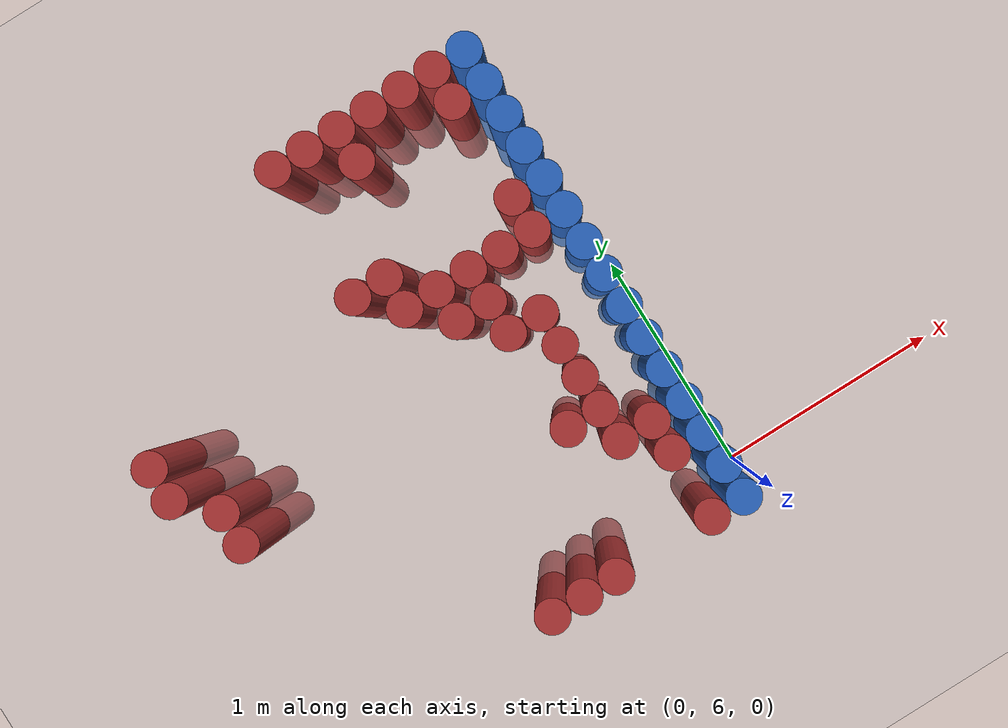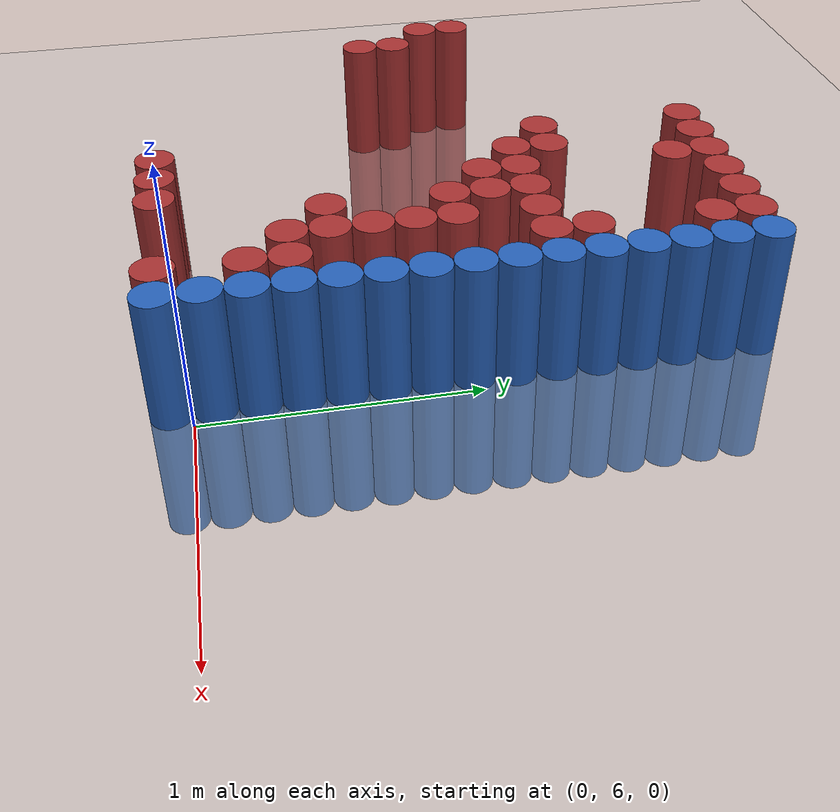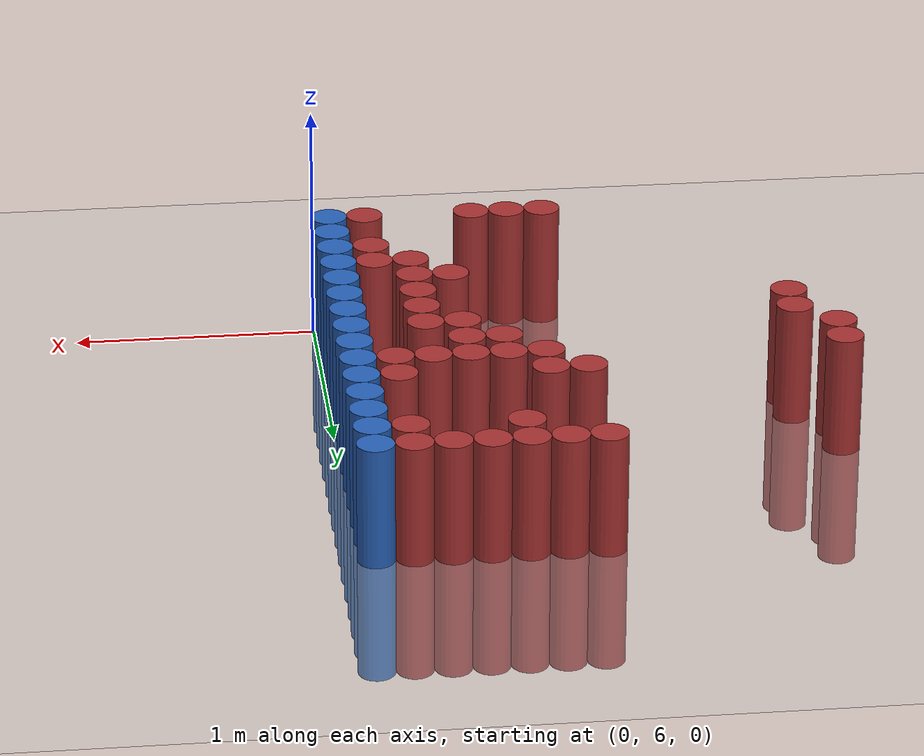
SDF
<sdf version="1.6">
 <world name="default">
  <model name="ground_plane">
   <static>1</static>
   <link name="link">
    <collision name="collision">
     <geometry><plane><normal>0 0 1</normal><size>100 100</size></plane></geometry>
     <surface><friction><ode><mu>100</mu><mu2>50</mu2></ode></friction></surface>
    </collision>
    <visual name="visual">
     <cast_shadows>0</cast_shadows>
     <geometry><plane><normal>0 0 1</normal><size>100 100</size></plane></geometry>
     <material>
      <script><uri>file://media/materials/scripts/gazebo.material</uri><name>Gazebo/Grey</name></script>
     </material>
    </visual>
   </link>
  </model>
  <model name="unit_cylinder_228">
   <static>1</static>
   <pose>-2.025000 7.125000 0.000000 0.000000 0.000000 0.000000</pose>
   <link name="link">
    <inertial>
     <mass>1</mass>
     <inertia><ixx>0.145833</ixx><ixy>0</ixy><ixz>0</ixz><iyy>0.145833</iyy><iyz>0</iyz><izz>0.125</izz></inertia>
    </inertial>
    <collision name="collision">
     <geometry><cylinder><radius>0.075000</radius><length>1</length></cylinder></geometry>
    </collision>
    <visual name="visual">
     <geometry><cylinder><radius>0.075000</radius><length>1</length></cylinder></geometry>
     <material>
      <ambient>0.648000 0.192000 0.192000 1</ambient>
      <diffuse>0.648000 0.192000 0.192000 1</diffuse>
     </material>
     <material>
      <script><name>Gazebo/Grey</name><uri>file://media/materials/scripts/gazebo.material</uri></script>
     </material>
    </visual>
   </link>
  </model>
  <model name="unit_cylinder_229">
   <static>1</static>
   <pose>-2.025000 7.275000 0.000000 0.000000 0.000000 0.000000</pose>
   <link name="link">
    <inertial>
     <mass>1</mass>
     <inertia><ixx>0.145833</ixx><ixy>0</ixy><ixz>0</ixz><iyy>0.145833</iyy><iyz>0</iyz><izz>0.125</izz></inertia>
    </inertial>
    <collision name="collision">
     <geometry><cylinder><radius>0.075000</radius><length>1</length></cylinder></geometry>
    </collision>
    <visual name="visual">
     <geometry><cylinder><radius>0.075000</radius><length>1</length></cylinder></geometry>
     <material>
      <ambient>0.648000 0.192000 0.192000 1</ambient>
      <diffuse>0.648000 0.192000 0.192000 1</diffuse>
     </material>
     <material>
      <script><name>Gazebo/Grey</name><uri>file://media/materials/scripts/gazebo.material</uri></script>
     </material>
    </visual>
   </link>
  </model>
  <model name="unit_cylinder_231">
   <static>1</static>
   <pose>-1.875000 6.825000 0.000000 0.000000 0.000000 0.000000</pose>
   <link name="link">
    <inertial>
     <mass>1</mass>
     <inertia><ixx>0.145833</ixx><ixy>0</ixy><ixz>0</ixz><iyy>0.145833</iyy><iyz>0</iyz><izz>0.125</izz></inertia>
    </inertial>
    <collision name="collision">
     <geometry><cylinder><radius>0.075000</radius><length>1</length></cylinder></geometry>
    </collision>
    <visual name="visual">
     <geometry><cylinder><radius>0.075000</radius><length>1</length></cylinder></geometry>
     <material>
      <ambient>0.648000 0.192000 0.192000 1</ambient>
      <diffuse>0.648000 0.192000 0.192000 1</diffuse>
     </material>
     <material>
      <script><name>Gazebo/Grey</name><uri>file://media/materials/scripts/gazebo.material</uri></script>
     </material>
    </visual>
   </link>
  </model>
  <model name="unit_cylinder_232">
   <static>1</static>
   <pose>-1.875000 6.975000 0.000000 0.000000 0.000000 0.000000</pose>
   <link name="link">
    <inertial>
     <mass>1</mass>
     <inertia><ixx>0.145833</ixx><ixy>0</ixy><ixz>0</ixz><iyy>0.145833</iyy><iyz>0</iyz><izz>0.125</izz></inertia>
    </inertial>
    <collision name="collision">
     <geometry><cylinder><radius>0.075000</radius><length>1</length></cylinder></geometry>
    </collision>
    <visual name="visual">
     <geometry><cylinder><radius>0.075000</radius><length>1</length></cylinder></geometry>
     <material>
      <ambient>0.648000 0.192000 0.192000 1</ambient>
      <diffuse>0.648000 0.192000 0.192000 1</diffuse>
     </material>
     <material>
      <script><name>Gazebo/Grey</name><uri>file://media/materials/scripts/gazebo.material</uri></script>
     </material>
    </visual>
   </link>
  </model>
  <model name="unit_cylinder_255">
   <static>1</static>
   <pose>-0.975000 5.925000 0.000000 0.000000 0.000000 0.000000</pose>
   <link name="link">
    <inertial>
     <mass>1</mass>
     <inertia><ixx>0.145833</ixx><ixy>0</ixy><ixz>0</ixz><iyy>0.145833</iyy><iyz>0</iyz><izz>0.125</izz></inertia>
    </inertial>
    <collision name="collision">
     <geometry><cylinder><radius>0.075000</radius><length>1</length></cylinder></geometry>
    </collision>
    <visual name="visual">
     <geometry><cylinder><radius>0.075000</radius><length>1</length></cylinder></geometry>
     <material>
      <ambient>0.648000 0.192000 0.192000 1</ambient>
      <diffuse>0.648000 0.192000 0.192000 1</diffuse>
     </material>
     <material>
      <script><name>Gazebo/Grey</name><uri>file://media/materials/scripts/gazebo.material</uri></script>
     </material>
    </visual>
   </link>
  </model>
  <model name="unit_cylinder_256">
   <static>1</static>
   <pose>-0.975000 7.425000 0.000000 0.000000 0.000000 0.000000</pose>
   <link name="link">
    <inertial>
     <mass>1</mass>
     <inertia><ixx>0.145833</ixx><ixy>0</ixy><ixz>0</ixz><iyy>0.145833</iyy><iyz>0</iyz><izz>0.125</izz></inertia>
    </inertial>
    <collision name="collision">
     <geometry><cylinder><radius>0.075000</radius><length>1</length></cylinder></geometry>
    </collision>
    <visual name="visual">
     <geometry><cylinder><radius>0.075000</radius><length>1</length></cylinder></geometry>
     <material>
      <ambient>0.648000 0.192000 0.192000 1</ambient>
      <diffuse>0.648000 0.192000 0.192000 1</diffuse>
     </material>
     <material>
      <script><name>Gazebo/Grey</name><uri>file://media/materials/scripts/gazebo.material</uri></script>
     </material>
    </visual>
   </link>
  </model>
  <model name="unit_cylinder_257">
   <static>1</static>
   <pose>-0.975000 8.025000 0.000000 0.000000 0.000000 0.000000</pose>
   <link name="link">
    <inertial>
     <mass>1</mass>
     <inertia><ixx>0.145833</ixx><ixy>0</ixy><ixz>0</ixz><iyy>0.145833</iyy><iyz>0</iyz><izz>0.125</izz></inertia>
    </inertial>
    <collision name="collision">
     <geometry><cylinder><radius>0.075000</radius><length>1</length></cylinder></geometry>
    </collision>
    <visual name="visual">
     <geometry><cylinder><radius>0.075000</radius><length>1</length></cylinder></geometry>
     <material>
      <ambient>0.648000 0.192000 0.192000 1</ambient>
      <diffuse>0.648000 0.192000 0.192000 1</diffuse>
     </material>
     <material>
      <script><name>Gazebo/Grey</name><uri>file://media/materials/scripts/gazebo.material</uri></script>
     </material>
    </visual>
   </link>
  </model>
  <model name="unit_cylinder_262">
   <static>1</static>
   <pose>-0.825000 5.925000 0.000000 0.000000 0.000000 0.000000</pose>
   <link name="link">
    <inertial>
     <mass>1</mass>
     <inertia><ixx>0.145833</ixx><ixy>0</ixy><ixz>0</ixz><iyy>0.145833</iyy><iyz>0</iyz><izz>0.125</izz></inertia>
    </inertial>
    <collision name="collision">
     <geometry><cylinder><radius>0.075000</radius><length>1</length></cylinder></geometry>
    </collision>
    <visual name="visual">
     <geometry><cylinder><radius>0.075000</radius><length>1</length></cylinder></geometry>
     <material>
      <ambient>0.648000 0.192000 0.192000 1</ambient>
      <diffuse>0.648000 0.192000 0.192000 1</diffuse>
     </material>
     <material>
      <script><name>Gazebo/Grey</name><uri>file://media/materials/scripts/gazebo.material</uri></script>
     </material>
    </visual>
   </link>
  </model>
  <model name="unit_cylinder_263">
   <static>1</static>
   <pose>-0.825000 7.275000 0.000000 0.000000 0.000000 0.000000</pose>
   <link name="link">
    <inertial>
     <mass>1</mass>
     <inertia><ixx>0.145833</ixx><ixy>0</ixy><ixz>0</ixz><iyy>0.145833</iyy><iyz>0</iyz><izz>0.125</izz></inertia>
    </inertial>
    <collision name="collision">
     <geometry><cylinder><radius>0.075000</radius><length>1</length></cylinder></geometry>
    </collision>
    <visual name="visual">
     <geometry><cylinder><radius>0.075000</radius><length>1</length></cylinder></geometry>
     <material>
      <ambient>0.648000 0.192000 0.192000 1</ambient>
      <diffuse>0.648000 0.192000 0.192000 1</diffuse>
     </material>
     <material>
      <script><name>Gazebo/Grey</name><uri>file://media/materials/scripts/gazebo.material</uri></script>
     </material>
    </visual>
   </link>
  </model>
  <model name="unit_cylinder_264">
   <static>1</static>
   <pose>-0.825000 7.425000 0.000000 0.000000 0.000000 0.000000</pose>
   <link name="link">
    <inertial>
     <mass>1</mass>
     <inertia><ixx>0.145833</ixx><ixy>0</ixy><ixz>0</ixz><iyy>0.145833</iyy><iyz>0</iyz><izz>0.125</izz></inertia>
    </inertial>
    <collision name="collision">
     <geometry><cylinder><radius>0.075000</radius><length>1</length></cylinder></geometry>
    </collision>
    <visual name="visual">
     <geometry><cylinder><radius>0.075000</radius><length>1</length></cylinder></geometry>
     <material>
      <ambient>0.648000 0.192000 0.192000 1</ambient>
      <diffuse>0.648000 0.192000 0.192000 1</diffuse>
     </material>
     <material>
      <script><name>Gazebo/Grey</name><uri>file://media/materials/scripts/gazebo.material</uri></script>
     </material>
    </visual>
   </link>
  </model>
  <model name="unit_cylinder_265">
   <static>1</static>
   <pose>-0.825000 8.025000 0.000000 0.000000 0.000000 0.000000</pose>
   <link name="link">
    <inertial>
     <mass>1</mass>
     <inertia><ixx>0.145833</ixx><ixy>0</ixy><ixz>0</ixz><iyy>0.145833</iyy><iyz>0</iyz><izz>0.125</izz></inertia>
    </inertial>
    <collision name="collision">
     <geometry><cylinder><radius>0.075000</radius><length>1</length></cylinder></geometry>
    </collision>
    <visual name="visual">
     <geometry><cylinder><radius>0.075000</radius><length>1</length></cylinder></geometry>
     <material>
      <ambient>0.648000 0.192000 0.192000 1</ambient>
      <diffuse>0.648000 0.192000 0.192000 1</diffuse>
     </material>
     <material>
      <script><name>Gazebo/Grey</name><uri>file://media/materials/scripts/gazebo.material</uri></script>
     </material>
    </visual>
   </link>
  </model>
  <model name="unit_cylinder_270">
   <static>1</static>
   <pose>-0.675000 5.925000 0.000000 0.000000 0.000000 0.000000</pose>
   <link name="link">
    <inertial>
     <mass>1</mass>
     <inertia><ixx>0.145833</ixx><ixy>0</ixy><ixz>0</ixz><iyy>0.145833</iyy><iyz>0</iyz><izz>0.125</izz></inertia>
    </inertial>
    <collision name="collision">
     <geometry><cylinder><radius>0.075000</radius><length>1</length></cylinder></geometry>
    </collision>
    <visual name="visual">
     <geometry><cylinder><radius>0.075000</radius><length>1</length></cylinder></geometry>
     <material>
      <ambient>0.648000 0.192000 0.192000 1</ambient>
      <diffuse>0.648000 0.192000 0.192000 1</diffuse>
     </material>
     <material>
      <script><name>Gazebo/Grey</name><uri>file://media/materials/scripts/gazebo.material</uri></script>
     </material>
    </visual>
   </link>
  </model>
  <model name="unit_cylinder_271">
   <static>1</static>
   <pose>-0.675000 7.125000 0.000000 0.000000 0.000000 0.000000</pose>
   <link name="link">
    <inertial>
     <mass>1</mass>
     <inertia><ixx>0.145833</ixx><ixy>0</ixy><ixz>0</ixz><iyy>0.145833</iyy><iyz>0</iyz><izz>0.125</izz></inertia>
    </inertial>
    <collision name="collision">
     <geometry><cylinder><radius>0.075000</radius><length>1</length></cylinder></geometry>
    </collision>
    <visual name="visual">
     <geometry><cylinder><radius>0.075000</radius><length>1</length></cylinder></geometry>
     <material>
      <ambient>0.648000 0.192000 0.192000 1</ambient>
      <diffuse>0.648000 0.192000 0.192000 1</diffuse>
     </material>
     <material>
      <script><name>Gazebo/Grey</name><uri>file://media/materials/scripts/gazebo.material</uri></script>
     </material>
    </visual>
   </link>
  </model>
  <model name="unit_cylinder_272">
   <static>1</static>
   <pose>-0.675000 7.275000 0.000000 0.000000 0.000000 0.000000</pose>
   <link name="link">
    <inertial>
     <mass>1</mass>
     <inertia><ixx>0.145833</ixx><ixy>0</ixy><ixz>0</ixz><iyy>0.145833</iyy><iyz>0</iyz><izz>0.125</izz></inertia>
    </inertial>
    <collision name="collision">
     <geometry><cylinder><radius>0.075000</radius><length>1</length></cylinder></geometry>
    </collision>
    <visual name="visual">
     <geometry><cylinder><radius>0.075000</radius><length>1</length></cylinder></geometry>
     <material>
      <ambient>0.648000 0.192000 0.192000 1</ambient>
      <diffuse>0.648000 0.192000 0.192000 1</diffuse>
     </material>
     <material>
      <script><name>Gazebo/Grey</name><uri>file://media/materials/scripts/gazebo.material</uri></script>
     </material>
    </visual>
   </link>
  </model>
  <model name="unit_cylinder_273">
   <static>1</static>
   <pose>-0.675000 7.875000 0.000000 0.000000 0.000000 0.000000</pose>
   <link name="link">
    <inertial>
     <mass>1</mass>
     <inertia><ixx>0.145833</ixx><ixy>0</ixy><ixz>0</ixz><iyy>0.145833</iyy><iyz>0</iyz><izz>0.125</izz></inertia>
    </inertial>
    <collision name="collision">
     <geometry><cylinder><radius>0.075000</radius><length>1</length></cylinder></geometry>
    </collision>
    <visual name="visual">
     <geometry><cylinder><radius>0.075000</radius><length>1</length></cylinder></geometry>
     <material>
      <ambient>0.648000 0.192000 0.192000 1</ambient>
      <diffuse>0.648000 0.192000 0.192000 1</diffuse>
     </material>
     <material>
      <script><name>Gazebo/Grey</name><uri>file://media/materials/scripts/gazebo.material</uri></script>
     </material>
    </visual>
   </link>
  </model>
  <model name="unit_cylinder_274">
   <static>1</static>
   <pose>-0.675000 8.025000 0.000000 0.000000 0.000000 0.000000</pose>
   <link name="link">
    <inertial>
     <mass>1</mass>
     <inertia><ixx>0.145833</ixx><ixy>0</ixy><ixz>0</ixz><iyy>0.145833</iyy><iyz>0</iyz><izz>0.125</izz></inertia>
    </inertial>
    <collision name="collision">
     <geometry><cylinder><radius>0.075000</radius><length>1</length></cylinder></geometry>
    </collision>
    <visual name="visual">
     <geometry><cylinder><radius>0.075000</radius><length>1</length></cylinder></geometry>
     <material>
      <ambient>0.648000 0.192000 0.192000 1</ambient>
      <diffuse>0.648000 0.192000 0.192000 1</diffuse>
     </material>
     <material>
      <script><name>Gazebo/Grey</name><uri>file://media/materials/scripts/gazebo.material</uri></script>
     </material>
    </visual>
   </link>
  </model>
  <model name="unit_cylinder_281">
   <static>1</static>
   <pose>-0.525000 6.525000 0.000000 0.000000 0.000000 0.000000</pose>
   <link name="link">
    <inertial>
     <mass>1</mass>
     <inertia><ixx>0.145833</ixx><ixy>0</ixy><ixz>0</ixz><iyy>0.145833</iyy><iyz>0</iyz><izz>0.125</izz></inertia>
    </inertial>
    <collision name="collision">
     <geometry><cylinder><radius>0.075000</radius><length>1</length></cylinder></geometry>
    </collision>
    <visual name="visual">
     <geometry><cylinder><radius>0.075000</radius><length>1</length></cylinder></geometry>
     <material>
      <ambient>0.648000 0.192000 0.192000 1</ambient>
      <diffuse>0.648000 0.192000 0.192000 1</diffuse>
     </material>
     <material>
      <script><name>Gazebo/Grey</name><uri>file://media/materials/scripts/gazebo.material</uri></script>
     </material>
    </visual>
   </link>
  </model>
  <model name="unit_cylinder_282">
   <static>1</static>
   <pose>-0.525000 6.975000 0.000000 0.000000 0.000000 0.000000</pose>
   <link name="link">
    <inertial>
     <mass>1</mass>
     <inertia><ixx>0.145833</ixx><ixy>0</ixy><ixz>0</ixz><iyy>0.145833</iyy><iyz>0</iyz><izz>0.125</izz></inertia>
    </inertial>
    <collision name="collision">
     <geometry><cylinder><radius>0.075000</radius><length>1</length></cylinder></geometry>
    </collision>
    <visual name="visual">
     <geometry><cylinder><radius>0.075000</radius><length>1</length></cylinder></geometry>
     <material>
      <ambient>0.648000 0.192000 0.192000 1</ambient>
      <diffuse>0.648000 0.192000 0.192000 1</diffuse>
     </material>
     <material>
      <script><name>Gazebo/Grey</name><uri>file://media/materials/scripts/gazebo.material</uri></script>
     </material>
    </visual>
   </link>
  </model>
  <model name="unit_cylinder_283">
   <static>1</static>
   <pose>-0.525000 7.125000 0.000000 0.000000 0.000000 0.000000</pose>
   <link name="link">
    <inertial>
     <mass>1</mass>
     <inertia><ixx>0.145833</ixx><ixy>0</ixy><ixz>0</ixz><iyy>0.145833</iyy><iyz>0</iyz><izz>0.125</izz></inertia>
    </inertial>
    <collision name="collision">
     <geometry><cylinder><radius>0.075000</radius><length>1</length></cylinder></geometry>
    </collision>
    <visual name="visual">
     <geometry><cylinder><radius>0.075000</radius><length>1</length></cylinder></geometry>
     <material>
      <ambient>0.648000 0.192000 0.192000 1</ambient>
      <diffuse>0.648000 0.192000 0.192000 1</diffuse>
     </material>
     <material>
      <script><name>Gazebo/Grey</name><uri>file://media/materials/scripts/gazebo.material</uri></script>
     </material>
    </visual>
   </link>
  </model>
  <model name="unit_cylinder_284">
   <static>1</static>
   <pose>-0.525000 7.275000 0.000000 0.000000 0.000000 0.000000</pose>
   <link name="link">
    <inertial>
     <mass>1</mass>
     <inertia><ixx>0.145833</ixx><ixy>0</ixy><ixz>0</ixz><iyy>0.145833</iyy><iyz>0</iyz><izz>0.125</izz></inertia>
    </inertial>
    <collision name="collision">
     <geometry><cylinder><radius>0.075000</radius><length>1</length></cylinder></geometry>
    </collision>
    <visual name="visual">
     <geometry><cylinder><radius>0.075000</radius><length>1</length></cylinder></geometry>
     <material>
      <ambient>0.648000 0.192000 0.192000 1</ambient>
      <diffuse>0.648000 0.192000 0.192000 1</diffuse>
     </material>
     <material>
      <script><name>Gazebo/Grey</name><uri>file://media/materials/scripts/gazebo.material</uri></script>
     </material>
    </visual>
   </link>
  </model>
  <model name="unit_cylinder_285">
   <static>1</static>
   <pose>-0.525000 8.025000 0.000000 0.000000 0.000000 0.000000</pose>
   <link name="link">
    <inertial>
     <mass>1</mass>
     <inertia><ixx>0.145833</ixx><ixy>0</ixy><ixz>0</ixz><iyy>0.145833</iyy><iyz>0</iyz><izz>0.125</izz></inertia>
    </inertial>
    <collision name="collision">
     <geometry><cylinder><radius>0.075000</radius><length>1</length></cylinder></geometry>
    </collision>
    <visual name="visual">
     <geometry><cylinder><radius>0.075000</radius><length>1</length></cylinder></geometry>
     <material>
      <ambient>0.648000 0.192000 0.192000 1</ambient>
      <diffuse>0.648000 0.192000 0.192000 1</diffuse>
     </material>
     <material>
      <script><name>Gazebo/Grey</name><uri>file://media/materials/scripts/gazebo.material</uri></script>
     </material>
    </visual>
   </link>
  </model>
  <model name="unit_cylinder_297">
   <static>1</static>
   <pose>-0.375000 6.375000 0.000000 0.000000 0.000000 0.000000</pose>
   <link name="link">
    <inertial>
     <mass>1</mass>
     <inertia><ixx>0.145833</ixx><ixy>0</ixy><ixz>0</ixz><iyy>0.145833</iyy><iyz>0</iyz><izz>0.125</izz></inertia>
    </inertial>
    <collision name="collision">
     <geometry><cylinder><radius>0.075000</radius><length>1</length></cylinder></geometry>
    </collision>
    <visual name="visual">
     <geometry><cylinder><radius>0.075000</radius><length>1</length></cylinder></geometry>
     <material>
      <ambient>0.648000 0.192000 0.192000 1</ambient>
      <diffuse>0.648000 0.192000 0.192000 1</diffuse>
     </material>
     <material>
      <script><name>Gazebo/Grey</name><uri>file://media/materials/scripts/gazebo.material</uri></script>
     </material>
    </visual>
   </link>
  </model>
  <model name="unit_cylinder_298">
   <static>1</static>
   <pose>-0.375000 6.525000 0.000000 0.000000 0.000000 0.000000</pose>
   <link name="link">
    <inertial>
     <mass>1</mass>
     <inertia><ixx>0.145833</ixx><ixy>0</ixy><ixz>0</ixz><iyy>0.145833</iyy><iyz>0</iyz><izz>0.125</izz></inertia>
    </inertial>
    <collision name="collision">
     <geometry><cylinder><radius>0.075000</radius><length>1</length></cylinder></geometry>
    </collision>
    <visual name="visual">
     <geometry><cylinder><radius>0.075000</radius><length>1</length></cylinder></geometry>
     <material>
      <ambient>0.648000 0.192000 0.192000 1</ambient>
      <diffuse>0.648000 0.192000 0.192000 1</diffuse>
     </material>
     <material>
      <script><name>Gazebo/Grey</name><uri>file://media/materials/scripts/gazebo.material</uri></script>
     </material>
    </visual>
   </link>
  </model>
  <model name="unit_cylinder_299">
   <static>1</static>
   <pose>-0.375000 6.675000 0.000000 0.000000 0.000000 0.000000</pose>
   <link name="link">
    <inertial>
     <mass>1</mass>
     <inertia><ixx>0.145833</ixx><ixy>0</ixy><ixz>0</ixz><iyy>0.145833</iyy><iyz>0</iyz><izz>0.125</izz></inertia>
    </inertial>
    <collision name="collision">
     <geometry><cylinder><radius>0.075000</radius><length>1</length></cylinder></geometry>
    </collision>
    <visual name="visual">
     <geometry><cylinder><radius>0.075000</radius><length>1</length></cylinder></geometry>
     <material>
      <ambient>0.648000 0.192000 0.192000 1</ambient>
      <diffuse>0.648000 0.192000 0.192000 1</diffuse>
     </material>
     <material>
      <script><name>Gazebo/Grey</name><uri>file://media/materials/scripts/gazebo.material</uri></script>
     </material>
    </visual>
   </link>
  </model>
  <model name="unit_cylinder_300">
   <static>1</static>
   <pose>-0.375000 6.825000 0.000000 0.000000 0.000000 0.000000</pose>
   <link name="link">
    <inertial>
     <mass>1</mass>
     <inertia><ixx>0.145833</ixx><ixy>0</ixy><ixz>0</ixz><iyy>0.145833</iyy><iyz>0</iyz><izz>0.125</izz></inertia>
    </inertial>
    <collision name="collision">
     <geometry><cylinder><radius>0.075000</radius><length>1</length></cylinder></geometry>
    </collision>
    <visual name="visual">
     <geometry><cylinder><radius>0.075000</radius><length>1</length></cylinder></geometry>
     <material>
      <ambient>0.648000 0.192000 0.192000 1</ambient>
      <diffuse>0.648000 0.192000 0.192000 1</diffuse>
     </material>
     <material>
      <script><name>Gazebo/Grey</name><uri>file://media/materials/scripts/gazebo.material</uri></script>
     </material>
    </visual>
   </link>
  </model>
  <model name="unit_cylinder_301">
   <static>1</static>
   <pose>-0.375000 6.975000 0.000000 0.000000 0.000000 0.000000</pose>
   <link name="link">
    <inertial>
     <mass>1</mass>
     <inertia><ixx>0.145833</ixx><ixy>0</ixy><ixz>0</ixz><iyy>0.145833</iyy><iyz>0</iyz><izz>0.125</izz></inertia>
    </inertial>
    <collision name="collision">
     <geometry><cylinder><radius>0.075000</radius><length>1</length></cylinder></geometry>
    </collision>
    <visual name="visual">
     <geometry><cylinder><radius>0.075000</radius><length>1</length></cylinder></geometry>
     <material>
      <ambient>0.648000 0.192000 0.192000 1</ambient>
      <diffuse>0.648000 0.192000 0.192000 1</diffuse>
     </material>
     <material>
      <script><name>Gazebo/Grey</name><uri>file://media/materials/scripts/gazebo.material</uri></script>
     </material>
    </visual>
   </link>
  </model>
  <model name="unit_cylinder_302">
   <static>1</static>
   <pose>-0.375000 7.275000 0.000000 0.000000 0.000000 0.000000</pose>
   <link name="link">
    <inertial>
     <mass>1</mass>
     <inertia><ixx>0.145833</ixx><ixy>0</ixy><ixz>0</ixz><iyy>0.145833</iyy><iyz>0</iyz><izz>0.125</izz></inertia>
    </inertial>
    <collision name="collision">
     <geometry><cylinder><radius>0.075000</radius><length>1</length></cylinder></geometry>
    </collision>
    <visual name="visual">
     <geometry><cylinder><radius>0.075000</radius><length>1</length></cylinder></geometry>
     <material>
      <ambient>0.648000 0.192000 0.192000 1</ambient>
      <diffuse>0.648000 0.192000 0.192000 1</diffuse>
     </material>
     <material>
      <script><name>Gazebo/Grey</name><uri>file://media/materials/scripts/gazebo.material</uri></script>
     </material>
    </visual>
   </link>
  </model>
  <model name="unit_cylinder_303">
   <static>1</static>
   <pose>-0.375000 8.025000 0.000000 0.000000 0.000000 0.000000</pose>
   <link name="link">
    <inertial>
     <mass>1</mass>
     <inertia><ixx>0.145833</ixx><ixy>0</ixy><ixz>0</ixz><iyy>0.145833</iyy><iyz>0</iyz><izz>0.125</izz></inertia>
    </inertial>
    <collision name="collision">
     <geometry><cylinder><radius>0.075000</radius><length>1</length></cylinder></geometry>
    </collision>
    <visual name="visual">
     <geometry><cylinder><radius>0.075000</radius><length>1</length></cylinder></geometry>
     <material>
      <ambient>0.648000 0.192000 0.192000 1</ambient>
      <diffuse>0.648000 0.192000 0.192000 1</diffuse>
     </material>
     <material>
      <script><name>Gazebo/Grey</name><uri>file://media/materials/scripts/gazebo.material</uri></script>
     </material>
    </visual>
   </link>
  </model>
  <model name="unit_cylinder_309">
   <static>1</static>
   <pose>-0.225000 5.925000 0.000000 0.000000 0.000000 0.000000</pose>
   <link name="link">
    <inertial>
     <mass>1</mass>
     <inertia><ixx>0.145833</ixx><ixy>0</ixy><ixz>0</ixz><iyy>0.145833</iyy><iyz>0</iyz><izz>0.125</izz></inertia>
    </inertial>
    <collision name="collision">
     <geometry><cylinder><radius>0.075000</radius><length>1</length></cylinder></geometry>
    </collision>
    <visual name="visual">
     <geometry><cylinder><radius>0.075000</radius><length>1</length></cylinder></geometry>
     <material>
      <ambient>0.648000 0.192000 0.192000 1</ambient>
      <diffuse>0.648000 0.192000 0.192000 1</diffuse>
     </material>
     <material>
      <script><name>Gazebo/Grey</name><uri>file://media/materials/scripts/gazebo.material</uri></script>
     </material>
    </visual>
   </link>
  </model>
  <model name="unit_cylinder_310">
   <static>1</static>
   <pose>-0.225000 6.225000 0.000000 0.000000 0.000000 0.000000</pose>
   <link name="link">
    <inertial>
     <mass>1</mass>
     <inertia><ixx>0.145833</ixx><ixy>0</ixy><ixz>0</ixz><iyy>0.145833</iyy><iyz>0</iyz><izz>0.125</izz></inertia>
    </inertial>
    <collision name="collision">
     <geometry><cylinder><radius>0.075000</radius><length>1</length></cylinder></geometry>
    </collision>
    <visual name="visual">
     <geometry><cylinder><radius>0.075000</radius><length>1</length></cylinder></geometry>
     <material>
      <ambient>0.648000 0.192000 0.192000 1</ambient>
      <diffuse>0.648000 0.192000 0.192000 1</diffuse>
     </material>
     <material>
      <script><name>Gazebo/Grey</name><uri>file://media/materials/scripts/gazebo.material</uri></script>
     </material>
    </visual>
   </link>
  </model>
  <model name="unit_cylinder_311">
   <static>1</static>
   <pose>-0.225000 6.375000 0.000000 0.000000 0.000000 0.000000</pose>
   <link name="link">
    <inertial>
     <mass>1</mass>
     <inertia><ixx>0.145833</ixx><ixy>0</ixy><ixz>0</ixz><iyy>0.145833</iyy><iyz>0</iyz><izz>0.125</izz></inertia>
    </inertial>
    <collision name="collision">
     <geometry><cylinder><radius>0.075000</radius><length>1</length></cylinder></geometry>
    </collision>
    <visual name="visual">
     <geometry><cylinder><radius>0.075000</radius><length>1</length></cylinder></geometry>
     <material>
      <ambient>0.648000 0.192000 0.192000 1</ambient>
      <diffuse>0.648000 0.192000 0.192000 1</diffuse>
     </material>
     <material>
      <script><name>Gazebo/Grey</name><uri>file://media/materials/scripts/gazebo.material</uri></script>
     </material>
    </visual>
   </link>
  </model>
  <model name="unit_cylinder_312">
   <static>1</static>
   <pose>-0.225000 7.275000 0.000000 0.000000 0.000000 0.000000</pose>
   <link name="link">
    <inertial>
     <mass>1</mass>
     <inertia><ixx>0.145833</ixx><ixy>0</ixy><ixz>0</ixz><iyy>0.145833</iyy><iyz>0</iyz><izz>0.125</izz></inertia>
    </inertial>
    <collision name="collision">
     <geometry><cylinder><radius>0.075000</radius><length>1</length></cylinder></geometry>
    </collision>
    <visual name="visual">
     <geometry><cylinder><radius>0.075000</radius><length>1</length></cylinder></geometry>
     <material>
      <ambient>0.648000 0.192000 0.192000 1</ambient>
      <diffuse>0.648000 0.192000 0.192000 1</diffuse>
     </material>
     <material>
      <script><name>Gazebo/Grey</name><uri>file://media/materials/scripts/gazebo.material</uri></script>
     </material>
    </visual>
   </link>
  </model>
  <model name="unit_cylinder_313">
   <static>1</static>
   <pose>-0.225000 7.425000 0.000000 0.000000 0.000000 0.000000</pose>
   <link name="link">
    <inertial>
     <mass>1</mass>
     <inertia><ixx>0.145833</ixx><ixy>0</ixy><ixz>0</ixz><iyy>0.145833</iyy><iyz>0</iyz><izz>0.125</izz></inertia>
    </inertial>
    <collision name="collision">
     <geometry><cylinder><radius>0.075000</radius><length>1</length></cylinder></geometry>
    </collision>
    <visual name="visual">
     <geometry><cylinder><radius>0.075000</radius><length>1</length></cylinder></geometry>
     <material>
      <ambient>0.648000 0.192000 0.192000 1</ambient>
      <diffuse>0.648000 0.192000 0.192000 1</diffuse>
     </material>
     <material>
      <script><name>Gazebo/Grey</name><uri>file://media/materials/scripts/gazebo.material</uri></script>
     </material>
    </visual>
   </link>
  </model>
  <model name="unit_cylinder_314">
   <static>1</static>
   <pose>-0.225000 7.875000 0.000000 0.000000 0.000000 0.000000</pose>
   <link name="link">
    <inertial>
     <mass>1</mass>
     <inertia><ixx>0.145833</ixx><ixy>0</ixy><ixz>0</ixz><iyy>0.145833</iyy><iyz>0</iyz><izz>0.125</izz></inertia>
    </inertial>
    <collision name="collision">
     <geometry><cylinder><radius>0.075000</radius><length>1</length></cylinder></geometry>
    </collision>
    <visual name="visual">
     <geometry><cylinder><radius>0.075000</radius><length>1</length></cylinder></geometry>
     <material>
      <ambient>0.648000 0.192000 0.192000 1</ambient>
      <diffuse>0.648000 0.192000 0.192000 1</diffuse>
     </material>
     <material>
      <script><name>Gazebo/Grey</name><uri>file://media/materials/scripts/gazebo.material</uri></script>
     </material>
    </visual>
   </link>
  </model>
  <model name="unit_cylinder_315">
   <static>1</static>
   <pose>-0.225000 8.025000 0.000000 0.000000 0.000000 0.000000</pose>
   <link name="link">
    <inertial>
     <mass>1</mass>
     <inertia><ixx>0.145833</ixx><ixy>0</ixy><ixz>0</ixz><iyy>0.145833</iyy><iyz>0</iyz><izz>0.125</izz></inertia>
    </inertial>
    <collision name="collision">
     <geometry><cylinder><radius>0.075000</radius><length>1</length></cylinder></geometry>
    </collision>
    <visual name="visual">
     <geometry><cylinder><radius>0.075000</radius><length>1</length></cylinder></geometry>
     <material>
      <ambient>0.648000 0.192000 0.192000 1</ambient>
      <diffuse>0.648000 0.192000 0.192000 1</diffuse>
     </material>
     <material>
      <script><name>Gazebo/Grey</name><uri>file://media/materials/scripts/gazebo.material</uri></script>
     </material>
    </visual>
   </link>
  </model>
  <model name="unit_cylinder_322">
   <static>1</static>
   <pose>-0.075000 5.925000 0.000000 0.000000 0.000000 0.000000</pose>
   <link name="link">
    <inertial>
     <mass>1</mass>
     <inertia><ixx>0.145833</ixx><ixy>0</ixy><ixz>0</ixz><iyy>0.145833</iyy><iyz>0</iyz><izz>0.125</izz></inertia>
    </inertial>
    <collision name="collision">
     <geometry><cylinder><radius>0.075000</radius><length>1</length></cylinder></geometry>
    </collision>
    <visual name="visual">
     <geometry><cylinder><radius>0.075000</radius><length>1</length></cylinder></geometry>
     <material>
      <ambient>0.152000 0.379000 0.720000 1</ambient>
      <diffuse>0.152000 0.379000 0.720000 1</diffuse>
     </material>
     <material>
      <script><name>Gazebo/Grey</name><uri>file://media/materials/scripts/gazebo.material</uri></script>
     </material>
    </visual>
   </link>
  </model>
  <model name="unit_cylinder_323">
   <static>1</static>
   <pose>-0.075000 6.075000 0.000000 0.000000 0.000000 0.000000</pose>
   <link name="link">
    <inertial>
     <mass>1</mass>
     <inertia><ixx>0.145833</ixx><ixy>0</ixy><ixz>0</ixz><iyy>0.145833</iyy><iyz>0</iyz><izz>0.125</izz></inertia>
    </inertial>
    <collision name="collision">
     <geometry><cylinder><radius>0.075000</radius><length>1</length></cylinder></geometry>
    </collision>
    <visual name="visual">
     <geometry><cylinder><radius>0.075000</radius><length>1</length></cylinder></geometry>
     <material>
      <ambient>0.152000 0.379000 0.720000 1</ambient>
      <diffuse>0.152000 0.379000 0.720000 1</diffuse>
     </material>
     <material>
      <script><name>Gazebo/Grey</name><uri>file://media/materials/scripts/gazebo.material</uri></script>
     </material>
    </visual>
   </link>
  </model>
  <model name="unit_cylinder_324">
   <static>1</static>
   <pose>-0.075000 6.225000 0.000000 0.000000 0.000000 0.000000</pose>
   <link name="link">
    <inertial>
     <mass>1</mass>
     <inertia><ixx>0.145833</ixx><ixy>0</ixy><ixz>0</ixz><iyy>0.145833</iyy><iyz>0</iyz><izz>0.125</izz></inertia>
    </inertial>
    <collision name="collision">
     <geometry><cylinder><radius>0.075000</radius><length>1</length></cylinder></geometry>
    </collision>
    <visual name="visual">
     <geometry><cylinder><radius>0.075000</radius><length>1</length></cylinder></geometry>
     <material>
      <ambient>0.152000 0.379000 0.720000 1</ambient>
      <diffuse>0.152000 0.379000 0.720000 1</diffuse>
     </material>
     <material>
      <script><name>Gazebo/Grey</name><uri>file://media/materials/scripts/gazebo.material</uri></script>
     </material>
    </visual>
   </link>
  </model>
  <model name="unit_cylinder_325">
   <static>1</static>
   <pose>-0.075000 6.375000 0.000000 0.000000 0.000000 0.000000</pose>
   <link name="link">
    <inertial>
     <mass>1</mass>
     <inertia><ixx>0.145833</ixx><ixy>0</ixy><ixz>0</ixz><iyy>0.145833</iyy><iyz>0</iyz><izz>0.125</izz></inertia>
    </inertial>
    <collision name="collision">
     <geometry><cylinder><radius>0.075000</radius><length>1</length></cylinder></geometry>
    </collision>
    <visual name="visual">
     <geometry><cylinder><radius>0.075000</radius><length>1</length></cylinder></geometry>
     <material>
      <ambient>0.152000 0.379000 0.720000 1</ambient>
      <diffuse>0.152000 0.379000 0.720000 1</diffuse>
     </material>
     <material>
      <script><name>Gazebo/Grey</name><uri>file://media/materials/scripts/gazebo.material</uri></script>
     </material>
    </visual>
   </link>
  </model>
  <model name="unit_cylinder_326">
   <static>1</static>
   <pose>-0.075000 6.525000 0.000000 0.000000 0.000000 0.000000</pose>
   <link name="link">
    <inertial>
     <mass>1</mass>
     <inertia><ixx>0.145833</ixx><ixy>0</ixy><ixz>0</ixz><iyy>0.145833</iyy><iyz>0</iyz><izz>0.125</izz></inertia>
    </inertial>
    <collision name="collision">
     <geometry><cylinder><radius>0.075000</radius><length>1</length></cylinder></geometry>
    </collision>
    <visual name="visual">
     <geometry><cylinder><radius>0.075000</radius><length>1</length></cylinder></geometry>
     <material>
      <ambient>0.152000 0.379000 0.720000 1</ambient>
      <diffuse>0.152000 0.379000 0.720000 1</diffuse>
     </material>
     <material>
      <script><name>Gazebo/Grey</name><uri>file://media/materials/scripts/gazebo.material</uri></script>
     </material>
    </visual>
   </link>
  </model>
  <model name="unit_cylinder_327">
   <static>1</static>
   <pose>-0.075000 6.675000 0.000000 0.000000 0.000000 0.000000</pose>
   <link name="link">
    <inertial>
     <mass>1</mass>
     <inertia><ixx>0.145833</ixx><ixy>0</ixy><ixz>0</ixz><iyy>0.145833</iyy><iyz>0</iyz><izz>0.125</izz></inertia>
    </inertial>
    <collision name="collision">
     <geometry><cylinder><radius>0.075000</radius><length>1</length></cylinder></geometry>
    </collision>
    <visual name="visual">
     <geometry><cylinder><radius>0.075000</radius><length>1</length></cylinder></geometry>
     <material>
      <ambient>0.152000 0.379000 0.720000 1</ambient>
      <diffuse>0.152000 0.379000 0.720000 1</diffuse>
     </material>
     <material>
      <script><name>Gazebo/Grey</name><uri>file://media/materials/scripts/gazebo.material</uri></script>
     </material>
    </visual>
   </link>
  </model>
  <model name="unit_cylinder_328">
   <static>1</static>
   <pose>-0.075000 6.825000 0.000000 0.000000 0.000000 0.000000</pose>
   <link name="link">
    <inertial>
     <mass>1</mass>
     <inertia><ixx>0.145833</ixx><ixy>0</ixy><ixz>0</ixz><iyy>0.145833</iyy><iyz>0</iyz><izz>0.125</izz></inertia>
    </inertial>
    <collision name="collision">
     <geometry><cylinder><radius>0.075000</radius><length>1</length></cylinder></geometry>
    </collision>
    <visual name="visual">
     <geometry><cylinder><radius>0.075000</radius><length>1</length></cylinder></geometry>
     <material>
      <ambient>0.152000 0.379000 0.720000 1</ambient>
      <diffuse>0.152000 0.379000 0.720000 1</diffuse>
     </material>
     <material>
      <script><name>Gazebo/Grey</name><uri>file://media/materials/scripts/gazebo.material</uri></script>
     </material>
    </visual>
   </link>
  </model>
  <model name="unit_cylinder_329">
   <static>1</static>
   <pose>-0.075000 6.975000 0.000000 0.000000 0.000000 0.000000</pose>
   <link name="link">
    <inertial>
     <mass>1</mass>
     <inertia><ixx>0.145833</ixx><ixy>0</ixy><ixz>0</ixz><iyy>0.145833</iyy><iyz>0</iyz><izz>0.125</izz></inertia>
    </inertial>
    <collision name="collision">
     <geometry><cylinder><radius>0.075000</radius><length>1</length></cylinder></geometry>
    </collision>
    <visual name="visual">
     <geometry><cylinder><radius>0.075000</radius><length>1</length></cylinder></geometry>
     <material>
      <ambient>0.152000 0.379000 0.720000 1</ambient>
      <diffuse>0.152000 0.379000 0.720000 1</diffuse>
     </material>
     <material>
      <script><name>Gazebo/Grey</name><uri>file://media/materials/scripts/gazebo.material</uri></script>
     </material>
    </visual>
   </link>
  </model>
  <model name="unit_cylinder_330">
   <static>1</static>
   <pose>-0.075000 7.125000 0.000000 0.000000 0.000000 0.000000</pose>
   <link name="link">
    <inertial>
     <mass>1</mass>
     <inertia><ixx>0.145833</ixx><ixy>0</ixy><ixz>0</ixz><iyy>0.145833</iyy><iyz>0</iyz><izz>0.125</izz></inertia>
    </inertial>
    <collision name="collision">
     <geometry><cylinder><radius>0.075000</radius><length>1</length></cylinder></geometry>
    </collision>
    <visual name="visual">
     <geometry><cylinder><radius>0.075000</radius><length>1</length></cylinder></geometry>
     <material>
      <ambient>0.152000 0.379000 0.720000 1</ambient>
      <diffuse>0.152000 0.379000 0.720000 1</diffuse>
     </material>
     <material>
      <script><name>Gazebo/Grey</name><uri>file://media/materials/scripts/gazebo.material</uri></script>
     </material>
    </visual>
   </link>
  </model>
  <model name="unit_cylinder_331">
   <static>1</static>
   <pose>-0.075000 7.275000 0.000000 0.000000 0.000000 0.000000</pose>
   <link name="link">
    <inertial>
     <mass>1</mass>
     <inertia><ixx>0.145833</ixx><ixy>0</ixy><ixz>0</ixz><iyy>0.145833</iyy><iyz>0</iyz><izz>0.125</izz></inertia>
    </inertial>
    <collision name="collision">
     <geometry><cylinder><radius>0.075000</radius><length>1</length></cylinder></geometry>
    </collision>
    <visual name="visual">
     <geometry><cylinder><radius>0.075000</radius><length>1</length></cylinder></geometry>
     <material>
      <ambient>0.152000 0.379000 0.720000 1</ambient>
      <diffuse>0.152000 0.379000 0.720000 1</diffuse>
     </material>
     <material>
      <script><name>Gazebo/Grey</name><uri>file://media/materials/scripts/gazebo.material</uri></script>
     </material>
    </visual>
   </link>
  </model>
  <model name="unit_cylinder_332">
   <static>1</static>
   <pose>-0.075000 7.425000 0.000000 0.000000 0.000000 0.000000</pose>
   <link name="link">
    <inertial>
     <mass>1</mass>
     <inertia><ixx>0.145833</ixx><ixy>0</ixy><ixz>0</ixz><iyy>0.145833</iyy><iyz>0</iyz><izz>0.125</izz></inertia>
    </inertial>
    <collision name="collision">
     <geometry><cylinder><radius>0.075000</radius><length>1</length></cylinder></geometry>
    </collision>
    <visual name="visual">
     <geometry><cylinder><radius>0.075000</radius><length>1</length></cylinder></geometry>
     <material>
      <ambient>0.152000 0.379000 0.720000 1</ambient>
      <diffuse>0.152000 0.379000 0.720000 1</diffuse>
     </material>
     <material>
      <script><name>Gazebo/Grey</name><uri>file://media/materials/scripts/gazebo.material</uri></script>
     </material>
    </visual>
   </link>
  </model>
  <model name="unit_cylinder_333">
   <static>1</static>
   <pose>-0.075000 7.575000 0.000000 0.000000 0.000000 0.000000</pose>
   <link name="link">
    <inertial>
     <mass>1</mass>
     <inertia><ixx>0.145833</ixx><ixy>0</ixy><ixz>0</ixz><iyy>0.145833</iyy><iyz>0</iyz><izz>0.125</izz></inertia>
    </inertial>
    <collision name="collision">
     <geometry><cylinder><radius>0.075000</radius><length>1</length></cylinder></geometry>
    </collision>
    <visual name="visual">
     <geometry><cylinder><radius>0.075000</radius><length>1</length></cylinder></geometry>
     <material>
      <ambient>0.152000 0.379000 0.720000 1</ambient>
      <diffuse>0.152000 0.379000 0.720000 1</diffuse>
     </material>
     <material>
      <script><name>Gazebo/Grey</name><uri>file://media/materials/scripts/gazebo.material</uri></script>
     </material>
    </visual>
   </link>
  </model>
  <model name="unit_cylinder_334">
   <static>1</static>
   <pose>-0.075000 7.725000 0.000000 0.000000 0.000000 0.000000</pose>
   <link name="link">
    <inertial>
     <mass>1</mass>
     <inertia><ixx>0.145833</ixx><ixy>0</ixy><ixz>0</ixz><iyy>0.145833</iyy><iyz>0</iyz><izz>0.125</izz></inertia>
    </inertial>
    <collision name="collision">
     <geometry><cylinder><radius>0.075000</radius><length>1</length></cylinder></geometry>
    </collision>
    <visual name="visual">
     <geometry><cylinder><radius>0.075000</radius><length>1</length></cylinder></geometry>
     <material>
      <ambient>0.152000 0.379000 0.720000 1</ambient>
      <diffuse>0.152000 0.379000 0.720000 1</diffuse>
     </material>
     <material>
      <script><name>Gazebo/Grey</name><uri>file://media/materials/scripts/gazebo.material</uri></script>
     </material>
    </visual>
   </link>
  </model>
  <model name="unit_cylinder_335">
   <static>1</static>
   <pose>-0.075000 7.875000 0.000000 0.000000 0.000000 0.000000</pose>
   <link name="link">
    <inertial>
     <mass>1</mass>
     <inertia><ixx>0.145833</ixx><ixy>0</ixy><ixz>0</ixz><iyy>0.145833</iyy><iyz>0</iyz><izz>0.125</izz></inertia>
    </inertial>
    <collision name="collision">
     <geometry><cylinder><radius>0.075000</radius><length>1</length></cylinder></geometry>
    </collision>
    <visual name="visual">
     <geometry><cylinder><radius>0.075000</radius><length>1</length></cylinder></geometry>
     <material>
      <ambient>0.152000 0.379000 0.720000 1</ambient>
      <diffuse>0.152000 0.379000 0.720000 1</diffuse>
     </material>
     <material>
      <script><name>Gazebo/Grey</name><uri>file://media/materials/scripts/gazebo.material</uri></script>
     </material>
    </visual>
   </link>
  </model>
  <model name="unit_cylinder_336">
   <static>1</static>
   <pose>-0.075000 8.025000 0.000000 0.000000 0.000000 0.000000</pose>
   <link name="link">
    <inertial>
     <mass>1</mass>
     <inertia><ixx>0.145833</ixx><ixy>0</ixy><ixz>0</ixz><iyy>0.145833</iyy><iyz>0</iyz><izz>0.125</izz></inertia>
    </inertial>
    <collision name="collision">
     <geometry><cylinder><radius>0.075000</radius><length>1</length></cylinder></geometry>
    </collision>
    <visual name="visual">
     <geometry><cylinder><radius>0.075000</radius><length>1</length></cylinder></geometry>
     <material>
      <ambient>0.152000 0.379000 0.720000 1</ambient>
      <diffuse>0.152000 0.379000 0.720000 1</diffuse>
     </material>
     <material>
      <script><name>Gazebo/Grey</name><uri>file://media/materials/scripts/gazebo.material</uri></script>
     </material>
    </visual>
   </link>
  </model>
 </world>
</sdf>
